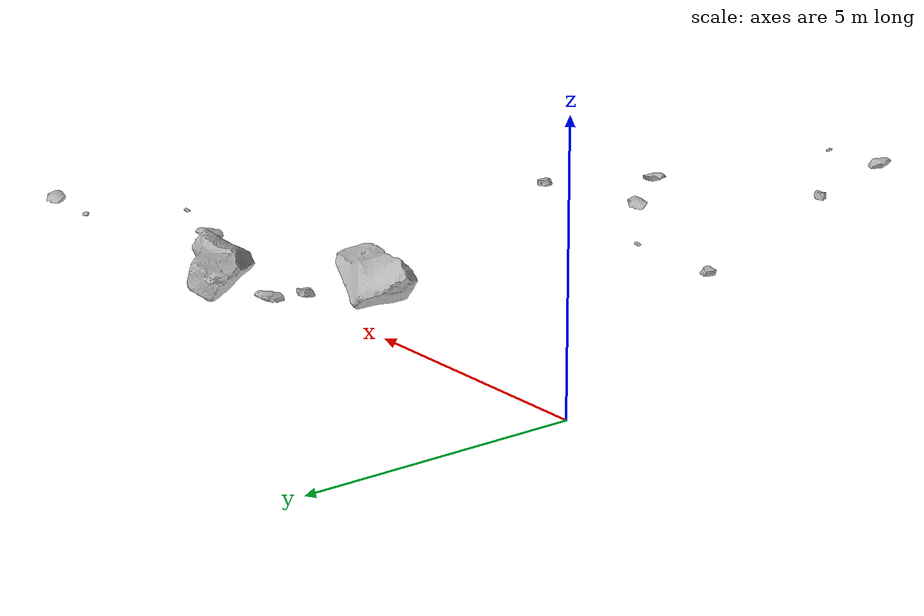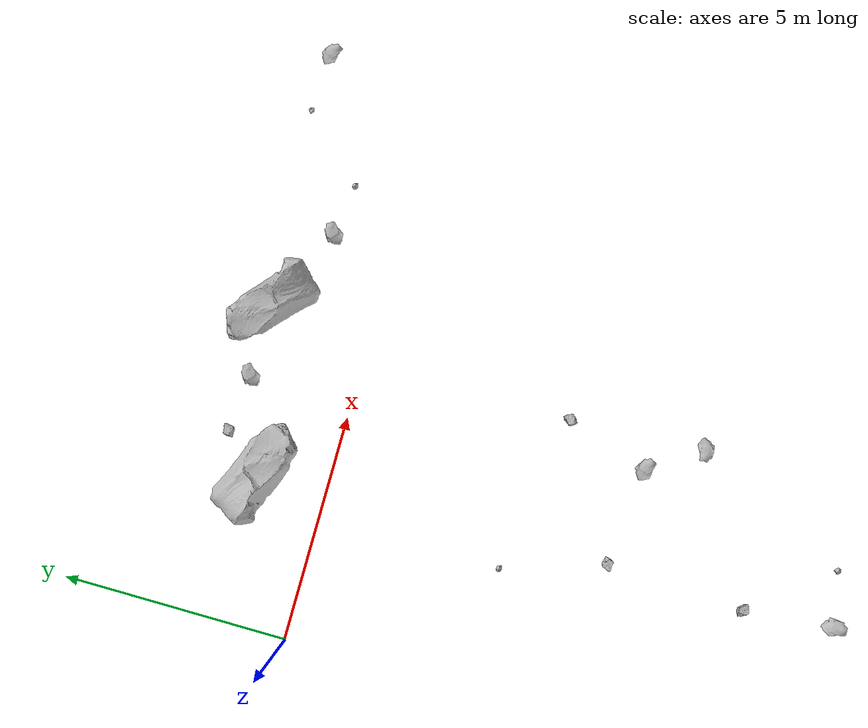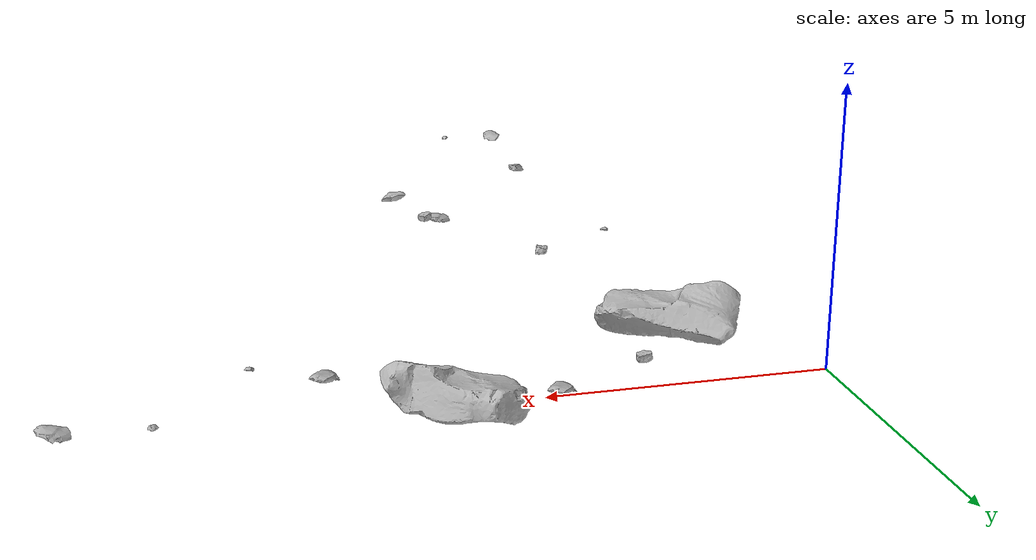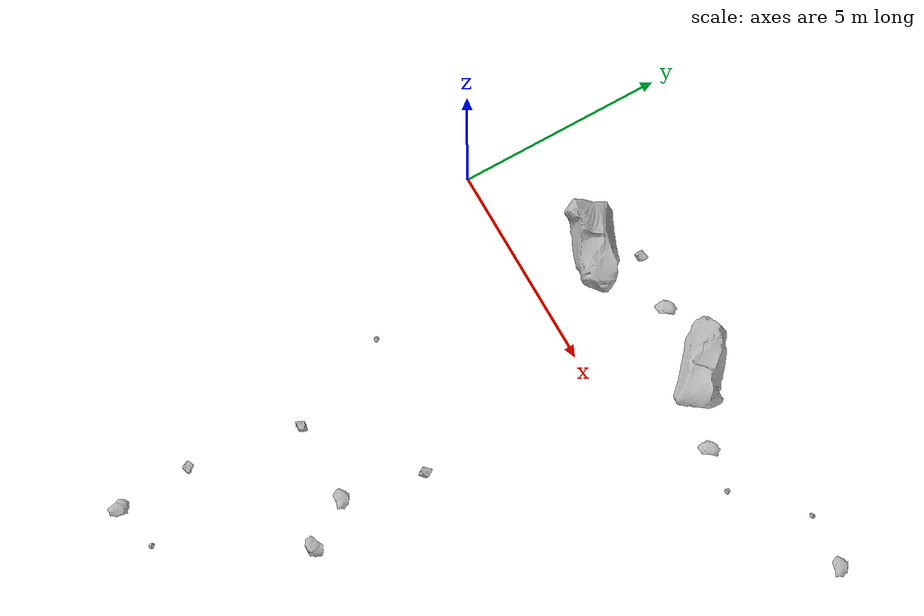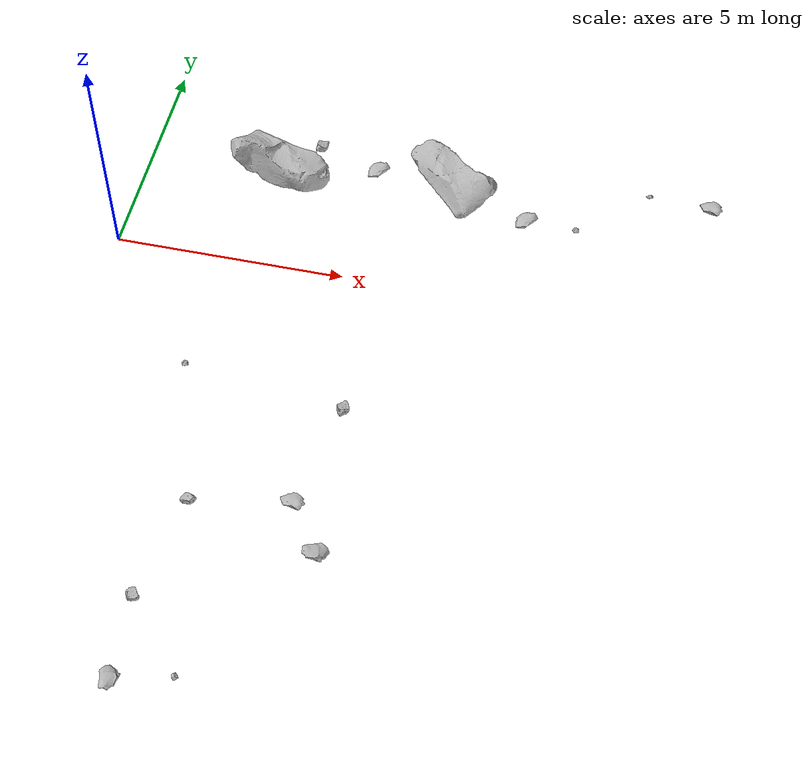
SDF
<sdf version="1.7">
 <world name="marsyard">
  <model name="Rock_17">
   <static>true</static>
   <pose>4.6714 -10.6274 1.8091 0.0000 0.0000 2.1657</pose>
   <link name="link">
    <visual name="visual">
     <geometry><mesh><uri>package://rock_generator/rocks_ws/rock_5/meshes/rock_5.obj</uri></mesh></geometry>
    </visual>
   </link>
  </model>
  <model name="Rock_28">
   <static>true</static>
   <pose>4.0767 2.2524 1.4792 0.0000 0.0000 -0.8429</pose>
   <link name="link">
    <visual name="visual">
     <geometry><mesh><uri>package://rock_generator/rocks_ws/rock_1/meshes/rock_1.obj</uri></mesh></geometry>
    </visual>
    <collision name="collision">
     <geometry><mesh><uri>package://rock_generator/rocks_ws/rock_1/meshes/rock_1.obj</uri></mesh></geometry>
    </collision>
   </link>
  </model>
  <model name="Rock_37">
   <static>true</static>
   <pose>2.8363 -3.9651 1.5306 0.0000 0.0000 0.0383</pose>
   <link name="link">
    <visual name="visual">
     <geometry><mesh><uri>package://rock_generator/rocks_ws/rock_5/meshes/rock_5.obj</uri></mesh></geometry>
    </visual>
    <collision name="collision">
     <geometry><mesh><uri>package://rock_generator/rocks_ws/rock_5/meshes/rock_5.obj</uri></mesh></geometry>
    </collision>
   </link>
  </model>
  <model name="Rock_57">
   <static>true</static>
   <pose>9.7808 1.1033 1.4516 0.0000 0.0000 0.0572</pose>
   <link name="link">
    <visual name="visual">
     <geometry><mesh><uri>package://rock_generator/rocks_ws/rock_5/meshes/rock_5.obj</uri></mesh></geometry>
    </visual>
   </link>
  </model>
  <model name="Rock_102">
   <static>true</static>
   <pose>11.1636 2.4897 1.3051 0.0000 0.0000 -2.6128</pose>
   <link name="link">
    <visual name="visual">
     <geometry><mesh><uri>package://rock_generator/rocks_ws/rock_5/meshes/rock_5.obj</uri></mesh></geometry>
    </visual>
   </link>
  </model>
  <model name="Rock_106">
   <static>true</static>
   <pose>8.6873 1.2978 1.2955 0.0000 0.0000 -2.5587</pose>
   <link name="link">
    <visual name="visual">
     <geometry><mesh><uri>package://rock_generator/rocks_ws/rock_8/meshes/rock_8.obj</uri></mesh></geometry>
    </visual>
   </link>
  </model>
  <model name="Rock_112">
   <static>true</static>
   <pose>5.2981 2.1814 1.1391 0.0000 0.0000 -2.5259</pose>
   <link name="link">
    <visual name="visual">
     <geometry><mesh><uri>package://rock_generator/rocks_ws/rock_8/meshes/rock_8.obj</uri></mesh></geometry>
    </visual>
   </link>
  </model>
  <model name="Rock_127">
   <static>true</static>
   <pose>6.8968 2.2235 0.9504 0.0000 0.0000 -0.5540</pose>
   <link name="link">
    <visual name="visual">
     <geometry><mesh><uri>package://rock_generator/rocks_ws/rock_4/meshes/rock_4.obj</uri></mesh></geometry>
    </visual>
   </link>
  </model>
  <model name="Rock_220">
   <static>true</static>
   <pose>3.4272 1.3673 1.5445 0.0000 0.0000 2.9064</pose>
   <link name="link">
    <visual name="visual">
     <geometry><mesh><uri>package://rock_generator/rocks_ws/rock_4/meshes/rock_4.obj</uri></mesh></geometry>
    </visual>
    <collision name="collision">
     <geometry><mesh><uri>package://rock_generator/rocks_ws/rock_4/meshes/rock_4.obj</uri></mesh></geometry>
    </collision>
   </link>
  </model>
  <model name="Rock_241">
   <static>true</static>
   <pose>12.4775 2.4256 1.3305 0.0000 0.0000 2.5298</pose>
   <link name="link">
    <visual name="visual">
     <geometry><mesh><uri>package://rock_generator/rocks_ws/rock_8/meshes/rock_8.obj</uri></mesh></geometry>
    </visual>
    <collision name="collision">
     <geometry><mesh><uri>package://rock_generator/rocks_ws/rock_8/meshes/rock_8.obj</uri></mesh></geometry>
    </collision>
   </link>
  </model>
  <model name="Rock_244">
   <static>true</static>
   <pose>6.3592 -7.5155 1.4086 0.0000 0.0000 0.0367</pose>
   <link name="link">
    <visual name="visual">
     <geometry><mesh><uri>package://rock_generator/rocks_ws/rock_8/meshes/rock_8.obj</uri></mesh></geometry>
    </visual>
    <collision name="collision">
     <geometry><mesh><uri>package://rock_generator/rocks_ws/rock_8/meshes/rock_8.obj</uri></mesh></geometry>
    </collision>
   </link>
  </model>
  <model name="Rock_248">
   <static>true</static>
   <pose>5.6388 -6.4055 1.2240 0.0000 0.0000 2.6233</pose>
   <link name="link">
    <visual name="visual">
     <geometry><mesh><uri>package://rock_generator/rocks_ws/rock_8/meshes/rock_8.obj</uri></mesh></geometry>
    </visual>
    <collision name="collision">
     <geometry><mesh><uri>package://rock_generator/rocks_ws/rock_8/meshes/rock_8.obj</uri></mesh></geometry>
    </collision>
   </link>
  </model>
  <model name="Rock_256">
   <static>true</static>
   <pose>3.3809 -9.0517 1.3656 0.0000 0.0000 -1.9882</pose>
   <link name="link">
    <visual name="visual">
     <geometry><mesh><uri>package://rock_generator/rocks_ws/rock_1/meshes/rock_1.obj</uri></mesh></geometry>
    </visual>
    <collision name="collision">
     <geometry><mesh><uri>package://rock_generator/rocks_ws/rock_1/meshes/rock_1.obj</uri></mesh></geometry>
    </collision>
   </link>
  </model>
  <model name="Rock_268">
   <static>true</static>
   <pose>3.5521 -10.8535 1.7405 0.0000 0.0000 1.5056</pose>
   <link name="link">
    <visual name="visual">
     <geometry><mesh><uri>package://rock_generator/rocks_ws/rock_8/meshes/rock_8.obj</uri></mesh></geometry>
    </visual>
    <collision name="collision">
     <geometry><mesh><uri>package://rock_generator/rocks_ws/rock_8/meshes/rock_8.obj</uri></mesh></geometry>
    </collision>
   </link>
  </model>
  <model name="Rock_298">
   <static>true</static>
   <pose>3.4700 -6.3186 0.3362 0.0000 0.0000 2.0321</pose>
   <link name="link">
    <visual name="visual">
     <geometry><mesh><uri>package://rock_generator/rocks_ws/rock_1/meshes/rock_1.obj</uri></mesh></geometry>
    </visual>
   </link>
  </model>
  <model name="Rock_324">
   <static>true</static>
   <pose>6.1712 -4.5485 1.7626 0.0000 0.0000 -0.2060</pose>
   <link name="link">
    <visual name="visual">
     <geometry><mesh><uri>package://rock_generator/rocks_ws/rock_1/meshes/rock_1.obj</uri></mesh></geometry>
    </visual>
   </link>
  </model>
 </world>
</sdf>
